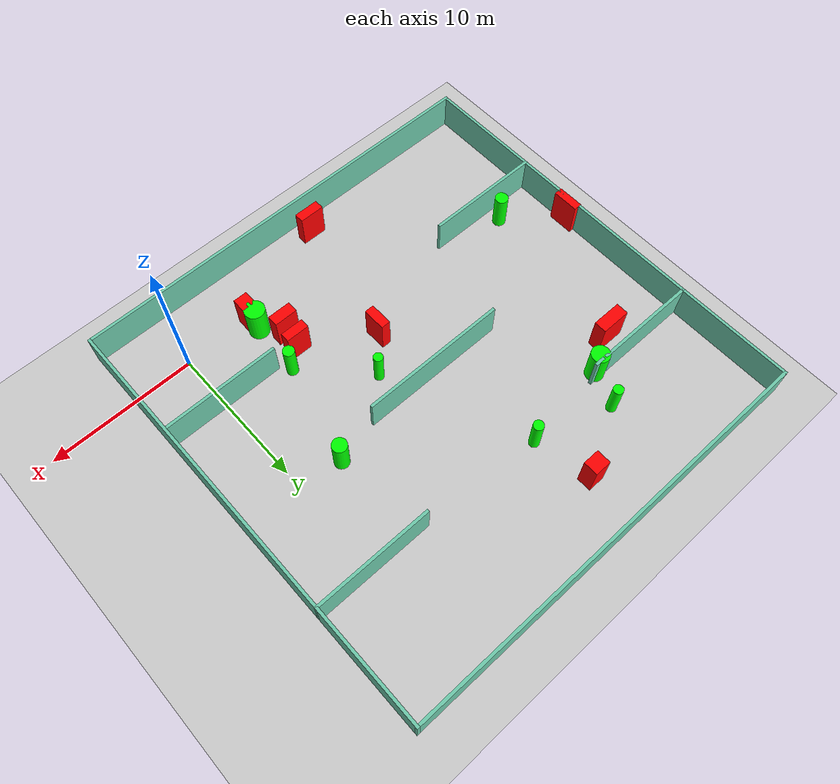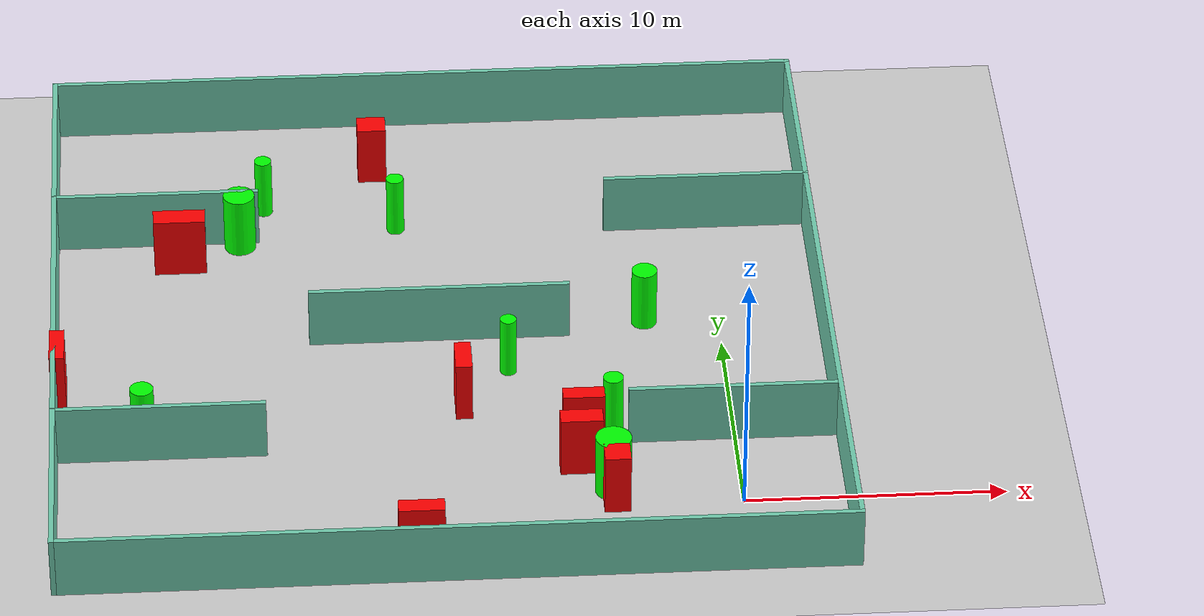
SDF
<sdf version="1.7">
 <world name="default">
  <light name="sun" type="directional">
   <pose>0 0 10 0 -0 0</pose>
   <diffuse>0.8 0.8 0.8 1</diffuse>
   <specular>0.2 0.2 0.2 1</specular>
   <attenuation>
    <range>1000</range>
    <constant>0.9</constant>
    <linear>0.01</linear>
    <quadratic>0.001</quadratic>
   </attenuation>
   <direction>-0.5 0.1 -0.9</direction>
   <spot><inner_angle>0</inner_angle><outer_angle>0</outer_angle><falloff>0</falloff></spot>
  </light>
  <model name="ground_plane">
   <static>1</static>
   <link name="link">
    <collision name="collision">
     <geometry><plane><normal>0 0 1</normal><size>100 100</size></plane></geometry>
     <surface>
      <contact><collide_bitmask>65535</collide_bitmask></contact>
      <friction><ode><mu>100</mu><mu2>50</mu2></ode></friction>
     </surface>
    </collision>
    <visual name="visual">
     <cast_shadows>0</cast_shadows>
     <geometry><plane><normal>0 0 1</normal><size>100 100</size></plane></geometry>
     <material>
      <script><uri>file://media/materials/scripts/gazebo.material</uri><name>Gazebo/Grey</name></script>
     </material>
    </visual>
   </link>
  </model>
  <gravity>0 0 -9.8</gravity>
  <magnetic_field>6e-06 2.3e-05 -4.2e-05</magnetic_field>
  <atmosphere type="adiabatic"/>
  <physics type="ode">
   <max_step_size>0.001</max_step_size>
   <real_time_factor>1</real_time_factor>
   <real_time_update_rate>1000</real_time_update_rate>
  </physics>
  <scene><ambient>0.4 0.4 0.4 1</ambient><background>0.7 0.7 0.7 1</background><shadows>1</shadows></scene>
  <spherical_coordinates>
   <surface_model>EARTH_WGS84</surface_model>
   <latitude_deg>0</latitude_deg>
   <longitude_deg>0</longitude_deg>
   <elevation>0</elevation>
   <heading_deg>0</heading_deg>
  </spherical_coordinates>
  <model name="my_base_walls">
   <link name="Wall_10">
    <collision name="Wall_10_Collision">
     <geometry><box><size>8.2 0.2 2.5</size></box></geometry>
     <pose>0 0 1.25 0 -0 0</pose>
    </collision>
    <visual name="Wall_10_Visual">
     <pose>0 0 1.25 0 -0 0</pose>
     <geometry><box><size>8.2 0.2 2.5</size></box></geometry>
     <material>
      <script><uri>file://media/materials/scripts/gazebo.material</uri><name>Gazebo/Grey</name></script>
      <ambient>0.435294 0.796078 0.67451 1</ambient>
     </material>
     <meta><layer>0</layer></meta>
    </visual>
    <pose>-11 -7 0 0 -0 0</pose>
   </link>
   <link name="Wall_12">
    <collision name="Wall_12_Collision">
     <geometry><box><size>8.2 0.2 2.5</size></box></geometry>
     <pose>0 0 1.25 0 -0 0</pose>
    </collision>
    <visual name="Wall_12_Visual">
     <pose>0 0 1.25 0 -0 0</pose>
     <geometry><box><size>8.2 0.2 2.5</size></box></geometry>
     <material>
      <script><uri>file://media/materials/scripts/gazebo.material</uri><name>Gazebo/Grey</name></script>
      <ambient>0.435294 0.796078 0.67451 1</ambient>
     </material>
     <meta><layer>0</layer></meta>
    </visual>
    <pose>-11 7 0 0 -0 0</pose>
   </link>
   <link name="Wall_14">
    <collision name="Wall_14_Collision">
     <geometry><box><size>8.2 0.2 2.5</size></box></geometry>
     <pose>0 0 1.25 0 -0 0</pose>
    </collision>
    <visual name="Wall_14_Visual">
     <pose>0 0 1.25 0 -0 0</pose>
     <geometry><box><size>8.2 0.2 2.5</size></box></geometry>
     <material>
      <script><uri>file://media/materials/scripts/gazebo.material</uri><name>Gazebo/Grey</name></script>
      <ambient>0.435294 0.796078 0.67451 1</ambient>
     </material>
     <meta><layer>0</layer></meta>
    </visual>
    <pose>11 7 0 0 -0 3.14159</pose>
   </link>
   <link name="Wall_16">
    <collision name="Wall_16_Collision">
     <geometry><box><size>10.2 0.2 2.5</size></box></geometry>
     <pose>0 0 1.25 0 -0 0</pose>
    </collision>
    <visual name="Wall_16_Visual">
     <pose>0 0 1.25 0 -0 0</pose>
     <geometry><box><size>10.2 0.2 2.5</size></box></geometry>
     <material>
      <script><uri>file://media/materials/scripts/gazebo.material</uri><name>Gazebo/Grey</name></script>
      <ambient>0.435294 0.796078 0.67451 1</ambient>
     </material>
     <meta><layer>0</layer></meta>
    </visual>
    <pose>0 0 0 0 -0 3.14159</pose>
   </link>
   <link name="Wall_2">
    <collision name="Wall_2_Collision">
     <geometry><box><size>30.2 0.2 2.5</size></box></geometry>
     <pose>0 0 1.25 0 -0 0</pose>
    </collision>
    <visual name="Wall_2_Visual">
     <pose>0 0 1.25 0 -0 0</pose>
     <geometry><box><size>30.2 0.2 2.5</size></box></geometry>
     <material>
      <script><uri>file://media/materials/scripts/gazebo.material</uri><name>Gazebo/Grey</name></script>
      <ambient>0.435294 0.796078 0.67451 1</ambient>
     </material>
     <meta><layer>0</layer></meta>
    </visual>
    <pose>0 -15 0 0 -0 3.14159</pose>
   </link>
   <link name="Wall_3">
    <collision name="Wall_3_Collision">
     <geometry><box><size>30.2 0.2 2.5</size></box></geometry>
     <pose>0 0 1.25 0 -0 0</pose>
    </collision>
    <visual name="Wall_3_Visual">
     <pose>0 0 1.25 0 -0 0</pose>
     <geometry><box><size>30.2 0.2 2.5</size></box></geometry>
     <material>
      <script><uri>file://media/materials/scripts/gazebo.material</uri><name>Gazebo/Grey</name></script>
      <ambient>0.435294 0.796078 0.67451 1</ambient>
     </material>
     <meta><layer>0</layer></meta>
    </visual>
    <pose>-15 0 0 0 -0 1.5708</pose>
   </link>
   <link name="Wall_4">
    <collision name="Wall_4_Collision">
     <geometry><box><size>30.2 0.2 2.5</size></box></geometry>
     <pose>0 0 1.25 0 -0 0</pose>
    </collision>
    <visual name="Wall_4_Visual">
     <pose>0 0 1.25 0 -0 0</pose>
     <geometry><box><size>30.2 0.2 2.5</size></box></geometry>
     <material>
      <script><uri>file://media/materials/scripts/gazebo.material</uri><name>Gazebo/Grey</name></script>
      <ambient>0.435294 0.796078 0.67451 1</ambient>
     </material>
     <meta><layer>0</layer></meta>
    </visual>
    <pose>0 15 0 0 -0 0</pose>
   </link>
   <link name="Wall_6">
    <collision name="Wall_6_Collision">
     <geometry><box><size>30.2 0.2 2.5</size></box></geometry>
     <pose>0 0 1.25 0 -0 0</pose>
    </collision>
    <visual name="Wall_6_Visual">
     <pose>0 0 1.25 0 -0 0</pose>
     <geometry><box><size>30.2 0.2 2.5</size></box></geometry>
     <material>
      <script><uri>file://media/materials/scripts/gazebo.material</uri><name>Gazebo/Grey</name></script>
      <ambient>0.435294 0.796078 0.67451 1</ambient>
     </material>
     <meta><layer>0</layer></meta>
    </visual>
    <pose>15 0 0 0 -0 1.5708</pose>
   </link>
   <link name="Wall_8">
    <collision name="Wall_8_Collision">
     <geometry><box><size>8.2 0.2 2.5</size></box></geometry>
     <pose>0 0 1.25 0 -0 0</pose>
    </collision>
    <visual name="Wall_8_Visual">
     <pose>0 0 1.25 0 -0 0</pose>
     <geometry><box><size>8.2 0.2 2.5</size></box></geometry>
     <material>
      <script><uri>file://media/materials/scripts/gazebo.material</uri><name>Gazebo/Grey</name></script>
      <ambient>0.435294 0.796078 0.67451 1</ambient>
     </material>
     <meta><layer>0</layer></meta>
    </visual>
    <pose>11 -7 0 0 -0 3.14159</pose>
   </link>
   <static>1</static>
   <pose>-11 11 0 0 -0 0</pose>
  </model>
  <model name="cylinder1">
   <static>1</static>
   <link name="link">
    <inertial>
     <mass>1</mass>
     <inertia><ixx>0.5</ixx><ixy>0</ixy><ixz>0</ixz><iyy>0.5</iyy><iyz>0</iyz><izz>1</izz></inertia>
    </inertial>
    <collision name="collision">
     <geometry><cylinder><radius>0.4515311326446502</radius><length>2.5</length></cylinder></geometry>
    </collision>
    <visual name="visual">
     <geometry><cylinder><radius>0.4515311326446502</radius><length>2.5</length></cylinder></geometry>
     <material>
      <ambient>0 1 0 1</ambient>
      <diffuse>0 1 0 1</diffuse>
      <specular>0.1 0.1 0.1 1</specular>
      <emissive>0 0 0 0</emissive>
     </material>
    </visual>
   </link>
   <pose>-22.612781130628942 5.111912348464514 1.25 0 0 0</pose>
  </model>
  <model name="cylinder2">
   <static>1</static>
   <link name="link">
    <inertial>
     <mass>1</mass>
     <inertia><ixx>0.5</ixx><ixy>0</ixy><ixz>0</ixz><iyy>0.5</iyy><iyz>0</iyz><izz>1</izz></inertia>
    </inertial>
    <collision name="collision">
     <geometry><cylinder><radius>0.49734641253810297</radius><length>2.5</length></cylinder></geometry>
    </collision>
    <visual name="visual">
     <geometry><cylinder><radius>0.49734641253810297</radius><length>2.5</length></cylinder></geometry>
     <material>
      <ambient>0 1 0 1</ambient>
      <diffuse>0 1 0 1</diffuse>
      <specular>0.1 0.1 0.1 1</specular>
      <emissive>0 0 0 0</emissive>
     </material>
    </visual>
   </link>
   <pose>-2.928648011580215 11.638071028429016 1.25 0 0 0</pose>
  </model>
  <model name="cylinder3">
   <static>1</static>
   <link name="link">
    <inertial>
     <mass>1</mass>
     <inertia><ixx>0.5</ixx><ixy>0</ixy><ixz>0</ixz><iyy>0.5</iyy><iyz>0</iyz><izz>1</izz></inertia>
    </inertial>
    <collision name="collision">
     <geometry><cylinder><radius>0.6247979697928132</radius><length>2.5</length></cylinder></geometry>
    </collision>
    <visual name="visual">
     <geometry><cylinder><radius>0.6247979697928132</radius><length>2.5</length></cylinder></geometry>
     <material>
      <ambient>0 1 0 1</ambient>
      <diffuse>0 1 0 1</diffuse>
      <specular>0.1 0.1 0.1 1</specular>
      <emissive>0 0 0 0</emissive>
     </material>
    </visual>
   </link>
   <pose>-18.667269423469904 17.68517212603321 1.25 0 0 0</pose>
  </model>
  <model name="cylinder4">
   <static>1</static>
   <link name="link">
    <inertial>
     <mass>1</mass>
     <inertia><ixx>0.5</ixx><ixy>0</ixy><ixz>0</ixz><iyy>0.5</iyy><iyz>0</iyz><izz>1</izz></inertia>
    </inertial>
    <collision name="collision">
     <geometry><cylinder><radius>0.6898852333524129</radius><length>2.5</length></cylinder></geometry>
    </collision>
    <visual name="visual">
     <geometry><cylinder><radius>0.6898852333524129</radius><length>2.5</length></cylinder></geometry>
     <material>
      <ambient>0 1 0 1</ambient>
      <diffuse>0 1 0 1</diffuse>
      <specular>0.1 0.1 0.1 1</specular>
      <emissive>0 0 0 0</emissive>
     </material>
    </visual>
   </link>
   <pose>-4.883809253188314 1.0048524577549003 1.25 0 0 0</pose>
  </model>
  <model name="cylinder5">
   <static>1</static>
   <link name="link">
    <inertial>
     <mass>1</mass>
     <inertia><ixx>0.5</ixx><ixy>0</ixy><ixz>0</ixz><iyy>0.5</iyy><iyz>0</iyz><izz>1</izz></inertia>
    </inertial>
    <collision name="collision">
     <geometry><cylinder><radius>0.3208349078879905</radius><length>2.5</length></cylinder></geometry>
    </collision>
    <visual name="visual">
     <geometry><cylinder><radius>0.3208349078879905</radius><length>2.5</length></cylinder></geometry>
     <material>
      <ambient>0 1 0 1</ambient>
      <diffuse>0 1 0 1</diffuse>
      <specular>0.1 0.1 0.1 1</specular>
      <emissive>0 0 0 0</emissive>
     </material>
    </visual>
   </link>
   <pose>-8.42576315076051 8.748212214935084 1.25 0 0 0</pose>
  </model>
  <model name="cylinder6">
   <static>1</static>
   <link name="link">
    <inertial>
     <mass>1</mass>
     <inertia><ixx>0.5</ixx><ixy>0</ixy><ixz>0</ixz><iyy>0.5</iyy><iyz>0</iyz><izz>1</izz></inertia>
    </inertial>
    <collision name="collision">
     <geometry><cylinder><radius>0.38901499697435704</radius><length>2.5</length></cylinder></geometry>
    </collision>
    <visual name="visual">
     <geometry><cylinder><radius>0.38901499697435704</radius><length>2.5</length></cylinder></geometry>
     <material>
      <ambient>0 1 0 1</ambient>
      <diffuse>0 1 0 1</diffuse>
      <specular>0.1 0.1 0.1 1</specular>
      <emissive>0 0 0 0</emissive>
     </material>
    </visual>
   </link>
   <pose>-4.6286789696911015 4.7668194625329185 1.25 0 0 0</pose>
  </model>
  <model name="cylinder7">
   <static>1</static>
   <link name="link">
    <inertial>
     <mass>1</mass>
     <inertia><ixx>0.5</ixx><ixy>0</ixy><ixz>0</ixz><iyy>0.5</iyy><iyz>0</iyz><izz>1</izz></inertia>
    </inertial>
    <collision name="collision">
     <geometry><cylinder><radius>0.33996201651461894</radius><length>2.5</length></cylinder></geometry>
    </collision>
    <visual name="visual">
     <geometry><cylinder><radius>0.33996201651461894</radius><length>2.5</length></cylinder></geometry>
     <material>
      <ambient>0 1 0 1</ambient>
      <diffuse>0 1 0 1</diffuse>
      <specular>0.1 0.1 0.1 1</specular>
      <emissive>0 0 0 0</emissive>
     </material>
    </visual>
   </link>
   <pose>-17.65959922937387 20.02919525384417 1.25 0 0 0</pose>
  </model>
  <model name="cylinder8">
   <static>1</static>
   <link name="link">
    <inertial>
     <mass>1</mass>
     <inertia><ixx>0.5</ixx><ixy>0</ixy><ixz>0</ixz><iyy>0.5</iyy><iyz>0</iyz><izz>1</izz></inertia>
    </inertial>
    <collision name="collision">
     <geometry><cylinder><radius>0.34948415102148367</radius><length>2.5</length></cylinder></geometry>
    </collision>
    <visual name="visual">
     <geometry><cylinder><radius>0.34948415102148367</radius><length>2.5</length></cylinder></geometry>
     <material>
      <ambient>0 1 0 1</ambient>
      <diffuse>0 1 0 1</diffuse>
      <specular>0.1 0.1 0.1 1</specular>
      <emissive>0 0 0 0</emissive>
     </material>
    </visual>
   </link>
   <pose>-12.421367020430633 18.48178897523186 1.25 0 0 0</pose>
  </model>
  <model name="box1">
   <static>1</static>
   <link name="link">
    <inertial>
     <mass>1</mass>
     <inertia><ixx>0.083</ixx><ixy>0</ixy><ixz>0</ixz><iyy>0.083</iyy><iyz>0</iyz><izz>0.083</izz></inertia>
    </inertial>
    <collision name="collision">
     <geometry><box><size>0.6475738318909414 1.596051916910667 2.5</size></box></geometry>
    </collision>
    <visual name="visual">
     <geometry><box><size>0.6475738318909414 1.596051916910667 2.5</size></box></geometry>
     <material>
      <ambient>1 0 0 1</ambient>
      <diffuse>1 0 0 1</diffuse>
      <specular>0.1 0.1 0.1 1</specular>
      <emissive>0 0 0 0</emissive>
     </material>
    </visual>
    <sensor name="my_contact" type="contact">
     <contact><collision>box_collision</collision><topic>__default_topic__</topic></contact>
    </sensor>
   </link>
   <pose>-10.281253196749773 6.55537314214822 1.25 0 0 0</pose>
  </model>
  <model name="box2">
   <static>1</static>
   <link name="link">
    <inertial>
     <mass>1</mass>
     <inertia><ixx>0.083</ixx><ixy>0</ixy><ixz>0</ixz><iyy>0.083</iyy><iyz>0</iyz><izz>0.083</izz></inertia>
    </inertial>
    <collision name="collision">
     <geometry><box><size>0.5777903803499154 1.8156599307838353 2.5</size></box></geometry>
    </collision>
    <visual name="visual">
     <geometry><box><size>0.5777903803499154 1.8156599307838353 2.5</size></box></geometry>
     <material>
      <ambient>1 0 0 1</ambient>
      <diffuse>1 0 0 1</diffuse>
      <specular>0.1 0.1 0.1 1</specular>
      <emissive>0 0 0 0</emissive>
     </material>
    </visual>
    <sensor name="my_contact" type="contact">
     <contact><collision>box_collision</collision><topic>__default_topic__</topic></contact>
    </sensor>
   </link>
   <pose>-25.85727231513045 8.150942088667502 1.25 0 0 0</pose>
  </model>
  <model name="box3">
   <static>1</static>
   <link name="link">
    <inertial>
     <mass>1</mass>
     <inertia><ixx>0.083</ixx><ixy>0</ixy><ixz>0</ixz><iyy>0.083</iyy><iyz>0</iyz><izz>0.083</izz></inertia>
    </inertial>
    <collision name="collision">
     <geometry><box><size>1.1441097262810809 0.9900671999852699 2.5</size></box></geometry>
    </collision>
    <visual name="visual">
     <geometry><box><size>1.1441097262810809 0.9900671999852699 2.5</size></box></geometry>
     <material>
      <ambient>1 0 0 1</ambient>
      <diffuse>1 0 0 1</diffuse>
      <specular>0.1 0.1 0.1 1</specular>
      <emissive>0 0 0 0</emissive>
     </material>
    </visual>
    <sensor name="my_contact" type="contact">
     <contact><collision>box_collision</collision><topic>__default_topic__</topic></contact>
    </sensor>
   </link>
   <pose>-13.227298726248328 22.37015665682152 1.25 0 0 0</pose>
  </model>
  <model name="box4">
   <static>1</static>
   <link name="link">
    <inertial>
     <mass>1</mass>
     <inertia><ixx>0.083</ixx><ixy>0</ixy><ixz>0</ixz><iyy>0.083</iyy><iyz>0</iyz><izz>0.083</izz></inertia>
    </inertial>
    <collision name="collision">
     <geometry><box><size>1.7447957988859095 0.673015300015494 2.5</size></box></geometry>
    </collision>
    <visual name="visual">
     <geometry><box><size>1.7447957988859095 0.673015300015494 2.5</size></box></geometry>
     <material>
      <ambient>1 0 0 1</ambient>
      <diffuse>1 0 0 1</diffuse>
      <specular>0.1 0.1 0.1 1</specular>
      <emissive>0 0 0 0</emissive>
     </material>
    </visual>
    <sensor name="my_contact" type="contact">
     <contact><collision>box_collision</collision><topic>__default_topic__</topic></contact>
    </sensor>
   </link>
   <pose>-12.282985643531102 -2.6864528153909433 1.25 0 0 0</pose>
  </model>
  <model name="box5">
   <static>1</static>
   <link name="link">
    <inertial>
     <mass>1</mass>
     <inertia><ixx>0.083</ixx><ixy>0</ixy><ixz>0</ixz><iyy>0.083</iyy><iyz>0</iyz><izz>0.083</izz></inertia>
    </inertial>
    <collision name="collision">
     <geometry><box><size>2.0492375358372605 0.8538920316099494 2.5</size></box></geometry>
    </collision>
    <visual name="visual">
     <geometry><box><size>2.0492375358372605 0.8538920316099494 2.5</size></box></geometry>
     <material>
      <ambient>1 0 0 1</ambient>
      <diffuse>1 0 0 1</diffuse>
      <specular>0.1 0.1 0.1 1</specular>
      <emissive>0 0 0 0</emissive>
     </material>
    </visual>
    <sensor name="my_contact" type="contact">
     <contact><collision>box_collision</collision><topic>__default_topic__</topic></contact>
    </sensor>
   </link>
   <pose>-21.061987680379776 16.37210750843136 1.25 0 0 0</pose>
  </model>
  <model name="box6">
   <static>1</static>
   <link name="link">
    <inertial>
     <mass>1</mass>
     <inertia><ixx>0.083</ixx><ixy>0</ixy><ixz>0</ixz><iyy>0.083</iyy><iyz>0</iyz><izz>0.083</izz></inertia>
    </inertial>
    <collision name="collision">
     <geometry><box><size>0.990753442718219 0.9805835664282241 2.5</size></box></geometry>
    </collision>
    <visual name="visual">
     <geometry><box><size>0.990753442718219 0.9805835664282241 2.5</size></box></geometry>
     <material>
      <ambient>1 0 0 1</ambient>
      <diffuse>1 0 0 1</diffuse>
      <specular>0.1 0.1 0.1 1</specular>
      <emissive>0 0 0 0</emissive>
     </material>
    </visual>
    <sensor name="my_contact" type="contact">
     <contact><collision>box_collision</collision><topic>__default_topic__</topic></contact>
    </sensor>
   </link>
   <pose>-4.797636071225398 0.12460054020458422 1.25 0 0 0</pose>
  </model>
  <model name="box7">
   <static>1</static>
   <link name="link">
    <inertial>
     <mass>1</mass>
     <inertia><ixx>0.083</ixx><ixy>0</ixy><ixz>0</ixz><iyy>0.083</iyy><iyz>0</iyz><izz>0.083</izz></inertia>
    </inertial>
    <collision name="collision">
     <geometry><box><size>1.6228640115831021 0.7631644866562333 2.5</size></box></geometry>
    </collision>
    <visual name="visual">
     <geometry><box><size>1.6228640115831021 0.7631644866562333 2.5</size></box></geometry>
     <material>
      <ambient>1 0 0 1</ambient>
      <diffuse>1 0 0 1</diffuse>
      <specular>0.1 0.1 0.1 1</specular>
      <emissive>0 0 0 0</emissive>
     </material>
    </visual>
    <sensor name="my_contact" type="contact">
     <contact><collision>box_collision</collision><topic>__default_topic__</topic></contact>
    </sensor>
   </link>
   <pose>-5.998440929053745 2.429831316819959 1.25 0 0 0</pose>
  </model>
  <model name="box8">
   <static>1</static>
   <link name="link">
    <inertial>
     <mass>1</mass>
     <inertia><ixx>0.083</ixx><ixy>0</ixy><ixz>0</ixz><iyy>0.083</iyy><iyz>0</iyz><izz>0.083</izz></inertia>
    </inertial>
    <collision name="collision">
     <geometry><box><size>1.6031129598435079 0.6544968535030179 2.5</size></box></geometry>
    </collision>
    <visual name="visual">
     <geometry><box><size>1.6031129598435079 0.6544968535030179 2.5</size></box></geometry>
     <material>
      <ambient>1 0 0 1</ambient>
      <diffuse>1 0 0 1</diffuse>
      <specular>0.1 0.1 0.1 1</specular>
      <emissive>0 0 0 0</emissive>
     </material>
    </visual>
    <sensor name="my_contact" type="contact">
     <contact><collision>box_collision</collision><topic>__default_topic__</topic></contact>
    </sensor>
   </link>
   <pose>-5.8218475608533105 3.8721424297725804 1.25 0 0 0</pose>
  </model>
 </world>
</sdf>
